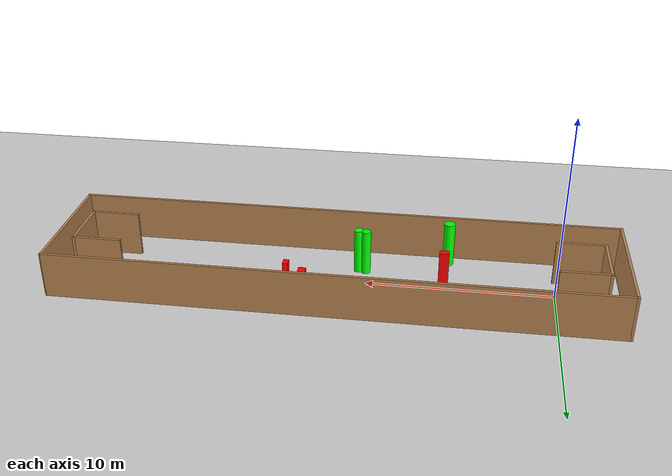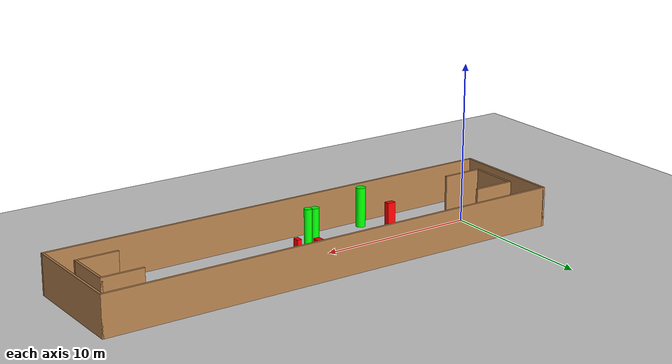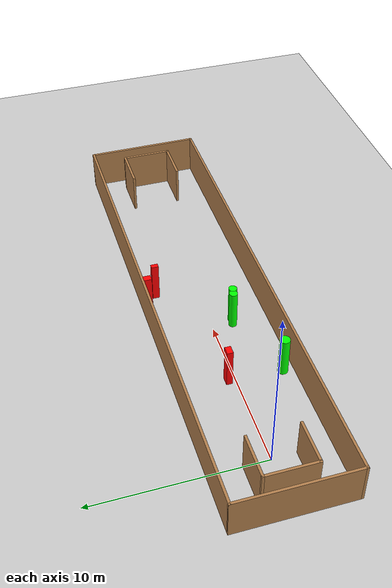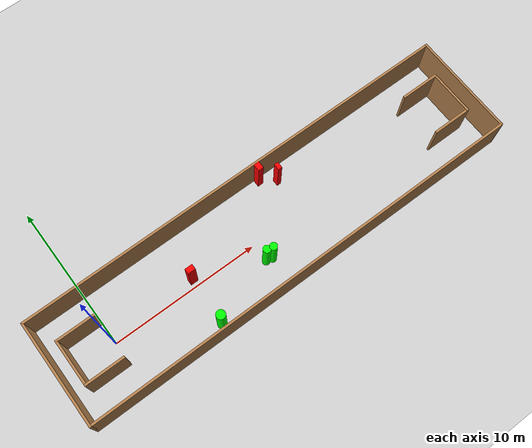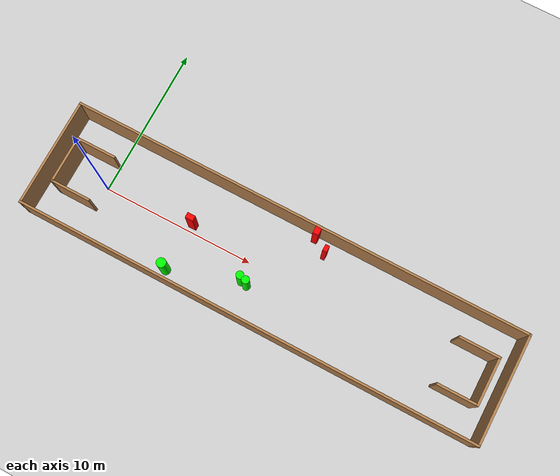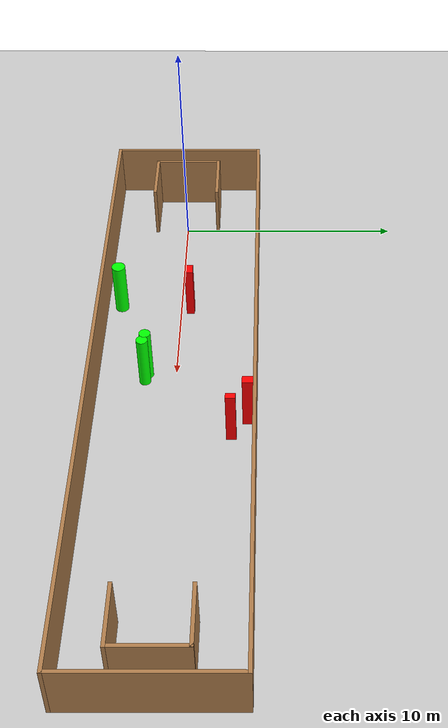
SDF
<sdf version="1.7">
 <world name="default">
  <light name="sun" type="directional">
   <pose>0 0 10 0 -0 0</pose>
   <diffuse>0.8 0.8 0.8 1</diffuse>
   <specular>0.2 0.2 0.2 1</specular>
   <attenuation>
    <range>1000</range>
    <constant>0.9</constant>
    <linear>0.01</linear>
    <quadratic>0.001</quadratic>
   </attenuation>
   <direction>-0.5 0.1 -0.9</direction>
   <spot><inner_angle>0</inner_angle><outer_angle>0</outer_angle><falloff>0</falloff></spot>
  </light>
  <model name="ground_plane">
   <static>1</static>
   <link name="link">
    <collision name="collision">
     <geometry><plane><normal>0 0 1</normal><size>100 100</size></plane></geometry>
     <surface>
      <contact><collide_bitmask>65535</collide_bitmask></contact>
      <friction><ode><mu>100</mu><mu2>50</mu2></ode></friction>
     </surface>
    </collision>
    <visual name="visual">
     <cast_shadows>0</cast_shadows>
     <geometry><plane><normal>0 0 1</normal><size>100 100</size></plane></geometry>
     <material>
      <script><uri>file://media/materials/scripts/gazebo.material</uri><name>Gazebo/Grey</name></script>
     </material>
    </visual>
   </link>
  </model>
  <gravity>0 0 -9.8</gravity>
  <magnetic_field>6e-06 2.3e-05 -4.2e-05</magnetic_field>
  <atmosphere type="adiabatic"/>
  <physics type="ode">
   <max_step_size>0.001</max_step_size>
   <real_time_factor>1</real_time_factor>
   <real_time_update_rate>1000</real_time_update_rate>
  </physics>
  <scene><ambient>0.4 0.4 0.4 1</ambient><background>0.7 0.7 0.7 1</background><shadows>1</shadows></scene>
  <spherical_coordinates>
   <surface_model>EARTH_WGS84</surface_model>
   <latitude_deg>0</latitude_deg>
   <longitude_deg>0</longitude_deg>
   <elevation>0</elevation>
   <heading_deg>0</heading_deg>
  </spherical_coordinates>
  <model name="my_base_walls">
   <link name="Wall_0">
    <collision name="Wall_0_Collision">
     <geometry><box><size>7.15 0.15 2.5</size></box></geometry>
     <pose>0 0 1.25 0 -0 0</pose>
    </collision>
    <visual name="Wall_0_Visual">
     <pose>0 0 1.25 0 -0 0</pose>
     <geometry><box><size>7.15 0.15 2.5</size></box></geometry>
     <material>
      <script><uri>file://media/materials/scripts/gazebo.material</uri><name>Gazebo/Wood</name></script>
      <ambient>1 1 1 1</ambient>
     </material>
     <meta><layer>0</layer></meta>
    </visual>
    <pose>-15 0 0 0 -0 1.5708</pose>
   </link>
   <link name="Wall_10">
    <collision name="Wall_10_Collision">
     <geometry><box><size>2.65 0.15 2.5</size></box></geometry>
     <pose>0 0 1.25 0 -0 0</pose>
    </collision>
    <visual name="Wall_10_Visual">
     <pose>0 0 1.25 0 -0 0</pose>
     <geometry><box><size>2.65 0.15 2.5</size></box></geometry>
     <material>
      <script><uri>file://media/materials/scripts/gazebo.material</uri><name>Gazebo/Wood</name></script>
      <ambient>1 1 1 1</ambient>
     </material>
     <meta><layer>0</layer></meta>
    </visual>
    <pose>-12.75 -1.5 0 0 -0 0</pose>
   </link>
   <link name="Wall_12">
    <collision name="Wall_12_Collision">
     <geometry><box><size>2.65 0.15 2.5</size></box></geometry>
     <pose>0 0 1.25 0 -0 0</pose>
    </collision>
    <visual name="Wall_12_Visual">
     <pose>0 0 1.25 0 -0 0</pose>
     <geometry><box><size>2.65 0.15 2.5</size></box></geometry>
     <material>
      <script><uri>file://media/materials/scripts/gazebo.material</uri><name>Gazebo/Wood</name></script>
      <ambient>1 1 1 1</ambient>
     </material>
     <meta><layer>0</layer></meta>
    </visual>
    <pose>-12.75 1.5 0 0 -0 0</pose>
   </link>
   <link name="Wall_14">
    <collision name="Wall_14_Collision">
     <geometry><box><size>3.15 0.15 2.5</size></box></geometry>
     <pose>0 0 1.25 0 -0 0</pose>
    </collision>
    <visual name="Wall_14_Visual">
     <pose>0 0 1.25 0 -0 0</pose>
     <geometry><box><size>3.15 0.15 2.5</size></box></geometry>
     <material>
      <script><uri>file://media/materials/scripts/gazebo.material</uri><name>Gazebo/Wood</name></script>
      <ambient>1 1 1 1</ambient>
     </material>
     <meta><layer>0</layer></meta>
    </visual>
    <pose>14 0 0 0 -0 -1.5708</pose>
   </link>
   <link name="Wall_15">
    <collision name="Wall_15_Collision">
     <geometry><box><size>2.65 0.15 2.5</size></box></geometry>
     <pose>0 0 1.25 0 -0 0</pose>
    </collision>
    <visual name="Wall_15_Visual">
     <pose>0 0 1.25 0 -0 0</pose>
     <geometry><box><size>2.65 0.15 2.5</size></box></geometry>
     <material>
      <script><uri>file://media/materials/scripts/gazebo.material</uri><name>Gazebo/Wood</name></script>
      <ambient>1 1 1 1</ambient>
     </material>
     <meta><layer>0</layer></meta>
    </visual>
    <pose>12.75 -1.5 0 0 -0 3.14159</pose>
   </link>
   <link name="Wall_17">
    <collision name="Wall_17_Collision">
     <geometry><box><size>2.65 0.15 2.5</size></box></geometry>
     <pose>0 0 1.25 0 -0 0</pose>
    </collision>
    <visual name="Wall_17_Visual">
     <pose>0 0 1.25 0 -0 0</pose>
     <geometry><box><size>2.65 0.15 2.5</size></box></geometry>
     <material>
      <script><uri>file://media/materials/scripts/gazebo.material</uri><name>Gazebo/Wood</name></script>
      <ambient>1 1 1 1</ambient>
     </material>
     <meta><layer>0</layer></meta>
    </visual>
    <pose>12.75 1.5 0 0 -0 3.14159</pose>
   </link>
   <link name="Wall_2">
    <collision name="Wall_2_Collision">
     <geometry><box><size>30.15 0.15 2.5</size></box></geometry>
     <pose>0 0 1.25 0 -0 0</pose>
    </collision>
    <visual name="Wall_2_Visual">
     <pose>0 0 1.25 0 -0 0</pose>
     <geometry><box><size>30.15 0.15 2.5</size></box></geometry>
     <material>
      <script><uri>file://media/materials/scripts/gazebo.material</uri><name>Gazebo/Wood</name></script>
      <ambient>1 1 1 1</ambient>
     </material>
     <meta><layer>0</layer></meta>
    </visual>
    <pose>-0 -3.5 0 0 -0 0</pose>
   </link>
   <link name="Wall_4">
    <collision name="Wall_4_Collision">
     <geometry><box><size>30.15 0.15 2.5</size></box></geometry>
     <pose>0 0 1.25 0 -0 0</pose>
    </collision>
    <visual name="Wall_4_Visual">
     <pose>0 0 1.25 0 -0 0</pose>
     <geometry><box><size>30.15 0.15 2.5</size></box></geometry>
     <material>
      <script><uri>file://media/materials/scripts/gazebo.material</uri><name>Gazebo/Wood</name></script>
      <ambient>1 1 1 1</ambient>
     </material>
     <meta><layer>0</layer></meta>
    </visual>
    <pose>-0 3.5 0 0 -0 0</pose>
   </link>
   <link name="Wall_6">
    <collision name="Wall_6_Collision">
     <geometry><box><size>7.15 0.15 2.5</size></box></geometry>
     <pose>0 0 1.25 0 -0 0</pose>
    </collision>
    <visual name="Wall_6_Visual">
     <pose>0 0 1.25 0 -0 0</pose>
     <geometry><box><size>7.15 0.15 2.5</size></box></geometry>
     <material>
      <script><uri>file://media/materials/scripts/gazebo.material</uri><name>Gazebo/Wood</name></script>
      <ambient>1 1 1 1</ambient>
     </material>
     <meta><layer>0</layer></meta>
    </visual>
    <pose>15 0 0 0 -0 -1.5708</pose>
   </link>
   <link name="Wall_9">
    <collision name="Wall_9_Collision">
     <geometry><box><size>3.15 0.15 2.5</size></box></geometry>
     <pose>0 0 1.25 0 -0 0</pose>
    </collision>
    <visual name="Wall_9_Visual">
     <pose>0 0 1.25 0 -0 0</pose>
     <geometry><box><size>3.15 0.15 2.5</size></box></geometry>
     <material>
      <script><uri>file://media/materials/scripts/gazebo.material</uri><name>Gazebo/Wood</name></script>
      <ambient>1 1 1 1</ambient>
     </material>
     <meta><layer>0</layer></meta>
    </visual>
    <pose>-14 0 0 0 -0 -1.5708</pose>
   </link>
   <static>1</static>
   <pose>11.5 0 0 0 -0 0</pose>
  </model>
  <model name="cylinder1">
   <static>1</static>
   <link name="link">
    <inertial>
     <mass>1</mass>
     <inertia><ixx>0.5</ixx><ixy>0</ixy><ixz>0</ixz><iyy>0.5</iyy><iyz>0</iyz><izz>1</izz></inertia>
    </inertial>
    <collision name="collision">
     <geometry><cylinder><radius>0.30321594929892826</radius><length>2.5</length></cylinder></geometry>
    </collision>
    <visual name="visual">
     <geometry><cylinder><radius>0.30321594929892826</radius><length>2.5</length></cylinder></geometry>
     <material>
      <ambient>0 1 0 1</ambient>
      <diffuse>0 1 0 1</diffuse>
      <specular>0.1 0.1 0.1 1</specular>
      <emissive>0 0 0 0</emissive>
     </material>
    </visual>
   </link>
   <pose>5.708748821221459 -2.7778417902447377 1.25 0 0 0</pose>
  </model>
  <model name="cylinder2">
   <static>1</static>
   <link name="link">
    <inertial>
     <mass>1</mass>
     <inertia><ixx>0.5</ixx><ixy>0</ixy><ixz>0</ixz><iyy>0.5</iyy><iyz>0</iyz><izz>1</izz></inertia>
    </inertial>
    <collision name="collision">
     <geometry><cylinder><radius>0.24965097430746777</radius><length>2.5</length></cylinder></geometry>
    </collision>
    <visual name="visual">
     <geometry><cylinder><radius>0.24965097430746777</radius><length>2.5</length></cylinder></geometry>
     <material>
      <ambient>0 1 0 1</ambient>
      <diffuse>0 1 0 1</diffuse>
      <specular>0.1 0.1 0.1 1</specular>
      <emissive>0 0 0 0</emissive>
     </material>
    </visual>
   </link>
   <pose>10.537510265345949 -1.3538664140597296 1.25 0 0 0</pose>
  </model>
  <model name="cylinder3">
   <static>1</static>
   <link name="link">
    <inertial>
     <mass>1</mass>
     <inertia><ixx>0.5</ixx><ixy>0</ixy><ixz>0</ixz><iyy>0.5</iyy><iyz>0</iyz><izz>1</izz></inertia>
    </inertial>
    <collision name="collision">
     <geometry><cylinder><radius>0.24988628822271702</radius><length>2.5</length></cylinder></geometry>
    </collision>
    <visual name="visual">
     <geometry><cylinder><radius>0.24988628822271702</radius><length>2.5</length></cylinder></geometry>
     <material>
      <ambient>0 1 0 1</ambient>
      <diffuse>0 1 0 1</diffuse>
      <specular>0.1 0.1 0.1 1</specular>
      <emissive>0 0 0 0</emissive>
     </material>
    </visual>
   </link>
   <pose>10.123183108163868 -1.2583583945431176 1.25 0 0 0</pose>
  </model>
  <model name="box1">
   <static>1</static>
   <link name="link">
    <inertial>
     <mass>1</mass>
     <inertia><ixx>0.083</ixx><ixy>0</ixy><ixz>0</ixz><iyy>0.083</iyy><iyz>0</iyz><izz>0.083</izz></inertia>
    </inertial>
    <collision name="collision">
     <geometry><box><size>0.27660339242221876 0.4261594108154856 2.5</size></box></geometry>
    </collision>
    <visual name="visual">
     <geometry><box><size>0.27660339242221876 0.4261594108154856 2.5</size></box></geometry>
     <material>
      <ambient>1 0 0 1</ambient>
      <diffuse>1 0 0 1</diffuse>
      <specular>0.1 0.1 0.1 1</specular>
      <emissive>0 0 0 0</emissive>
     </material>
    </visual>
    <sensor name="my_contact" type="contact">
     <contact><collision>box_collision</collision><topic>__default_topic__</topic></contact>
    </sensor>
   </link>
   <pose>13.831842065028559 2.5057372501614825 1.25 0 0 0</pose>
  </model>
  <model name="box2">
   <static>1</static>
   <link name="link">
    <inertial>
     <mass>1</mass>
     <inertia><ixx>0.083</ixx><ixy>0</ixy><ixz>0</ixz><iyy>0.083</iyy><iyz>0</iyz><izz>0.083</izz></inertia>
    </inertial>
    <collision name="collision">
     <geometry><box><size>0.5168182980612892 0.3555993673161256 2.5</size></box></geometry>
    </collision>
    <visual name="visual">
     <geometry><box><size>0.5168182980612892 0.3555993673161256 2.5</size></box></geometry>
     <material>
      <ambient>1 0 0 1</ambient>
      <diffuse>1 0 0 1</diffuse>
      <specular>0.1 0.1 0.1 1</specular>
      <emissive>0 0 0 0</emissive>
     </material>
    </visual>
    <sensor name="my_contact" type="contact">
     <contact><collision>box_collision</collision><topic>__default_topic__</topic></contact>
    </sensor>
   </link>
   <pose>5.865393805053406 0.42896362603572413 1.25 0 0 0</pose>
  </model>
  <model name="box3">
   <static>1</static>
   <link name="link">
    <inertial>
     <mass>1</mass>
     <inertia><ixx>0.083</ixx><ixy>0</ixy><ixz>0</ixz><iyy>0.083</iyy><iyz>0</iyz><izz>0.083</izz></inertia>
    </inertial>
    <collision name="collision">
     <geometry><box><size>0.37730532234983094 0.47149495892897275 2.5</size></box></geometry>
    </collision>
    <visual name="visual">
     <geometry><box><size>0.37730532234983094 0.47149495892897275 2.5</size></box></geometry>
     <material>
      <ambient>1 0 0 1</ambient>
      <diffuse>1 0 0 1</diffuse>
      <specular>0.1 0.1 0.1 1</specular>
      <emissive>0 0 0 0</emissive>
     </material>
    </visual>
    <sensor name="my_contact" type="contact">
     <contact><collision>box_collision</collision><topic>__default_topic__</topic></contact>
    </sensor>
   </link>
   <pose>12.887747864203032 3.2015970073065345 1.25 0 0 0</pose>
  </model>
 </world>
</sdf>
